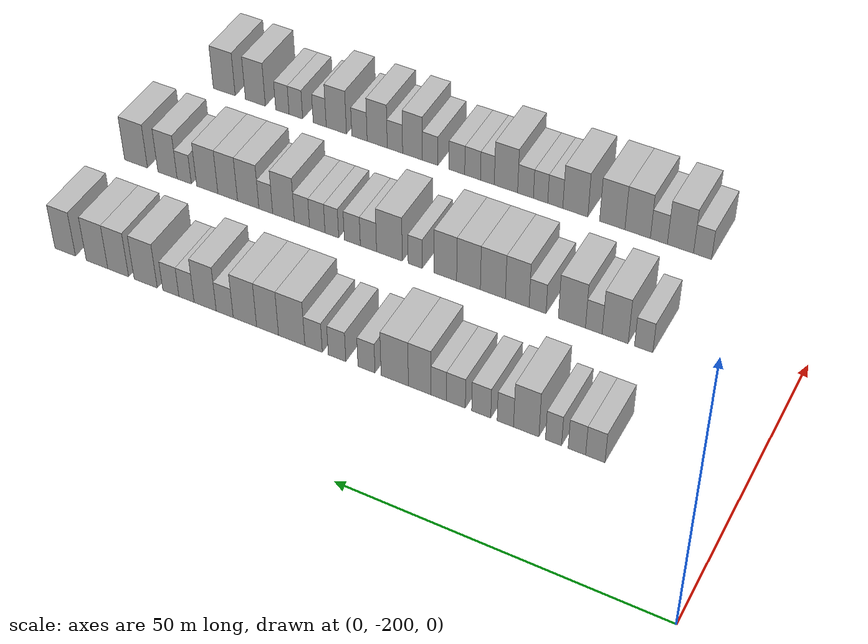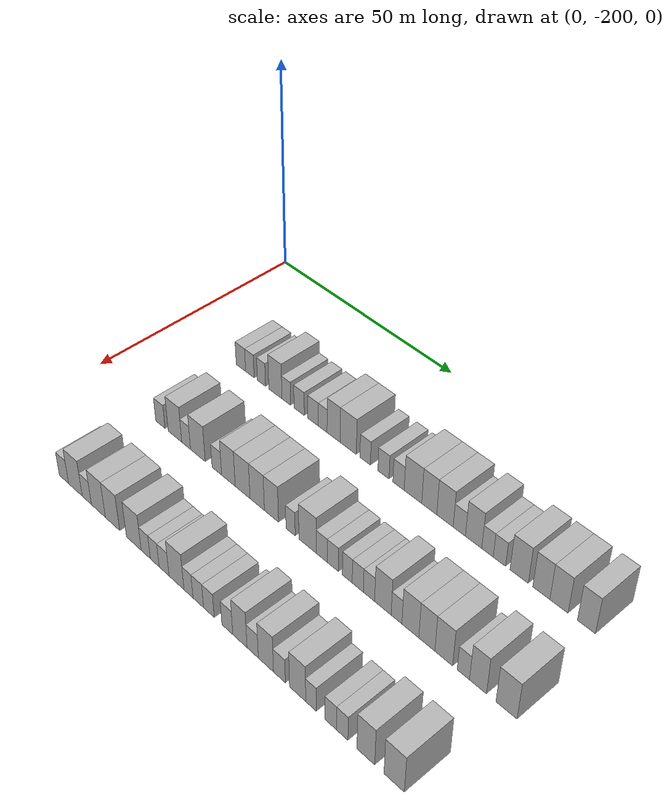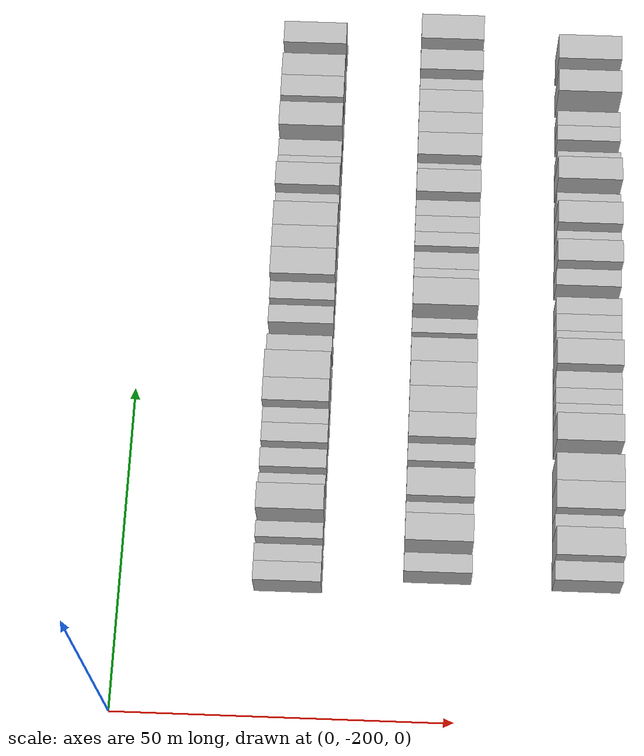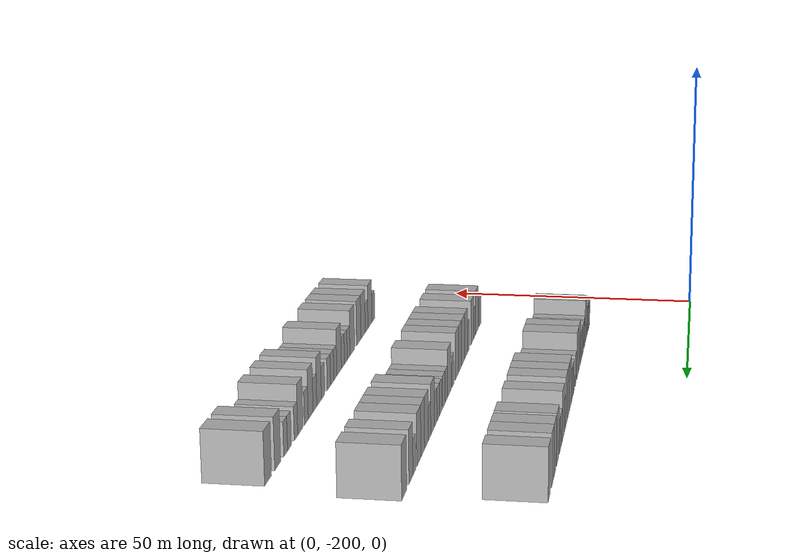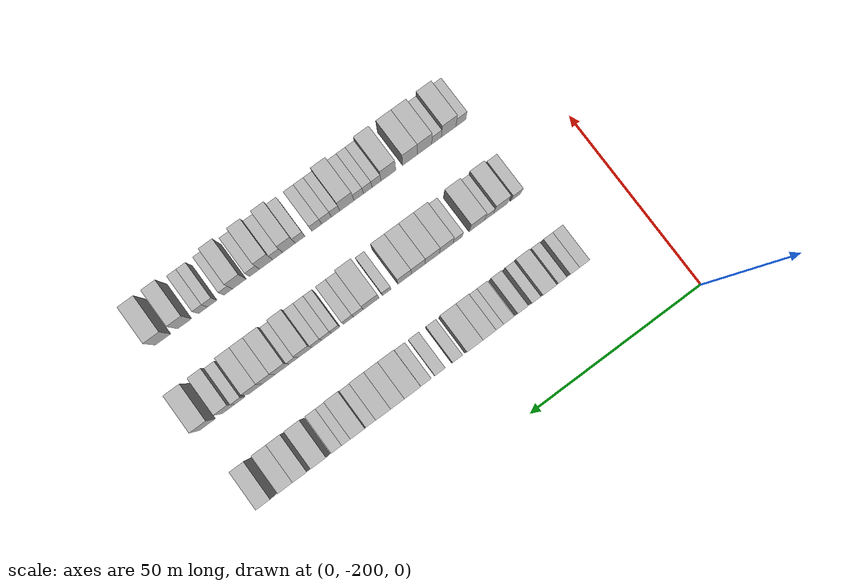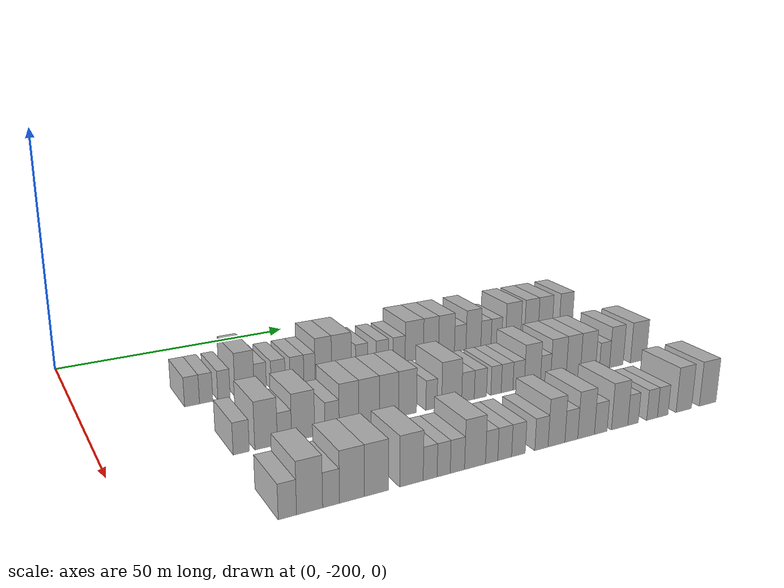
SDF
<sdf version="1.6">
 <world name="default">
  <model name="building_50">
   <static>1</static>
   <pose>25.0000 -179.8263 0 0.000000 0.000000 0.000000</pose>
   <link name="link">
    <pose>0 0 3.00 0 0 0</pose>
    <collision name="collision"><geometry><box><size>10.0000 2.9030 6.0000</size></box></geometry></collision>
    <visual name="visual">
     <cast_shadows>0</cast_shadows>
     <geometry><box><size>10.0000 2.9030 6.0000</size></box></geometry>
     <material>
      <script>
       <uri>model://HANNAS_wall/materials/scripts</uri>
       <uri>model://HANNAS_wall/materials/textures</uri>
       <name>vrc/HANNAS_wall</name>
      </script>
     </material>
    </visual>
   </link>
  </model>
  <model name="building_51">
   <static>1</static>
   <pose>25.0000 -177.0569 0 0.000000 0.000000 0.000000</pose>
   <link name="link">
    <pose>0 0 3.00 0 0 0</pose>
    <collision name="collision"><geometry><box><size>10.0000 2.6357 6.0000</size></box></geometry></collision>
    <visual name="visual">
     <cast_shadows>0</cast_shadows>
     <geometry><box><size>10.0000 2.6357 6.0000</size></box></geometry>
     <material>
      <script>
       <uri>model://HANNAS_wall/materials/scripts</uri>
       <uri>model://HANNAS_wall/materials/textures</uri>
       <name>vrc/HANNAS_wall</name>
      </script>
     </material>
    </visual>
   </link>
  </model>
  <model name="building_52">
   <static>1</static>
   <pose>25.0000 -173.5118 0 0.000000 0.000000 0.000000</pose>
   <link name="link">
    <pose>0 0 3.00 0 0 0</pose>
    <collision name="collision"><geometry><box><size>10.0000 2.4545 6.0000</size></box></geometry></collision>
    <visual name="visual">
     <cast_shadows>0</cast_shadows>
     <geometry><box><size>10.0000 2.4545 6.0000</size></box></geometry>
     <material>
      <script>
       <uri>model://HANNAS_wall/materials/scripts</uri>
       <uri>model://HANNAS_wall/materials/textures</uri>
       <name>vrc/HANNAS_wall</name>
      </script>
     </material>
    </visual>
   </link>
  </model>
  <model name="building_53">
   <static>1</static>
   <pose>25.0000 -169.3284 0 0.000000 0.000000 0.000000</pose>
   <link name="link">
    <pose>0 0 4.50 0 0 0</pose>
    <collision name="collision"><geometry><box><size>10.0000 3.9124 9.0000</size></box></geometry></collision>
    <visual name="visual">
     <cast_shadows>0</cast_shadows>
     <geometry><box><size>10.0000 3.9124 9.0000</size></box></geometry>
     <material>
      <script>
       <uri>model://HANNAS_wall/materials/scripts</uri>
       <uri>model://HANNAS_wall/materials/textures</uri>
       <name>vrc/HANNAS_wall</name>
      </script>
     </material>
    </visual>
   </link>
  </model>
  <model name="building_54">
   <static>1</static>
   <pose>25.0000 -166.1035 0 0.000000 0.000000 0.000000</pose>
   <link name="link">
    <pose>0 0 3.00 0 0 0</pose>
    <collision name="collision"><geometry><box><size>10.0000 2.5373 6.0000</size></box></geometry></collision>
    <visual name="visual">
     <cast_shadows>0</cast_shadows>
     <geometry><box><size>10.0000 2.5373 6.0000</size></box></geometry>
     <material>
      <script>
       <uri>model://HANNAS_wall/materials/scripts</uri>
       <uri>model://HANNAS_wall/materials/textures</uri>
       <name>vrc/HANNAS_wall</name>
      </script>
     </material>
    </visual>
   </link>
  </model>
  <model name="building_55">
   <static>1</static>
   <pose>25.0000 -162.3389 0 0.000000 0.000000 0.000000</pose>
   <link name="link">
    <pose>0 0 3.00 0 0 0</pose>
    <collision name="collision"><geometry><box><size>10.0000 2.9918 6.0000</size></box></geometry></collision>
    <visual name="visual">
     <cast_shadows>0</cast_shadows>
     <geometry><box><size>10.0000 2.9918 6.0000</size></box></geometry>
     <material>
      <script>
       <uri>model://HANNAS_wall/materials/scripts</uri>
       <uri>model://HANNAS_wall/materials/textures</uri>
       <name>vrc/HANNAS_wall</name>
      </script>
     </material>
    </visual>
   </link>
  </model>
  <model name="building_56">
   <static>1</static>
   <pose>25.0000 -158.3521 0 0.000000 0.000000 0.000000</pose>
   <link name="link">
    <pose>0 0 3.00 0 0 0</pose>
    <collision name="collision"><geometry><box><size>10.0000 2.9819 6.0000</size></box></geometry></collision>
    <visual name="visual">
     <cast_shadows>0</cast_shadows>
     <geometry><box><size>10.0000 2.9819 6.0000</size></box></geometry>
     <material>
      <script>
       <uri>model://HANNAS_wall/materials/scripts</uri>
       <uri>model://HANNAS_wall/materials/textures</uri>
       <name>vrc/HANNAS_wall</name>
      </script>
     </material>
    </visual>
   </link>
  </model>
  <model name="building_57">
   <static>1</static>
   <pose>25.0000 -155.6301 0 0.000000 0.000000 0.000000</pose>
   <link name="link">
    <pose>0 0 3.00 0 0 0</pose>
    <collision name="collision"><geometry><box><size>10.0000 2.4621 6.0000</size></box></geometry></collision>
    <visual name="visual">
     <cast_shadows>0</cast_shadows>
     <geometry><box><size>10.0000 2.4621 6.0000</size></box></geometry>
     <material>
      <script>
       <uri>model://HANNAS_wall/materials/scripts</uri>
       <uri>model://HANNAS_wall/materials/textures</uri>
       <name>vrc/HANNAS_wall</name>
      </script>
     </material>
    </visual>
   </link>
  </model>
  <model name="building_58">
   <static>1</static>
   <pose>25.0000 -152.5825 0 0.000000 0.000000 0.000000</pose>
   <link name="link">
    <pose>0 0 4.50 0 0 0</pose>
    <collision name="collision"><geometry><box><size>10.0000 3.6330 9.0000</size></box></geometry></collision>
    <visual name="visual">
     <cast_shadows>0</cast_shadows>
     <geometry><box><size>10.0000 3.6330 9.0000</size></box></geometry>
     <material>
      <script>
       <uri>model://HANNAS_wall/materials/scripts</uri>
       <uri>model://HANNAS_wall/materials/textures</uri>
       <name>vrc/HANNAS_wall</name>
      </script>
     </material>
    </visual>
   </link>
  </model>
  <model name="building_59">
   <static>1</static>
   <pose>25.0000 -148.5546 0 0.000000 0.000000 0.000000</pose>
   <link name="link">
    <pose>0 0 4.50 0 0 0</pose>
    <collision name="collision"><geometry><box><size>10.0000 4.4228 9.0000</size></box></geometry></collision>
    <visual name="visual">
     <cast_shadows>0</cast_shadows>
     <geometry><box><size>10.0000 4.4228 9.0000</size></box></geometry>
     <material>
      <script>
       <uri>model://HANNAS_wall/materials/scripts</uri>
       <uri>model://HANNAS_wall/materials/textures</uri>
       <name>vrc/HANNAS_wall</name>
      </script>
     </material>
    </visual>
   </link>
  </model>
  <model name="building_60">
   <static>1</static>
   <pose>25.0000 -143.9439 0 0.000000 0.000000 0.000000</pose>
   <link name="link">
    <pose>0 0 3.00 0 0 0</pose>
    <collision name="collision"><geometry><box><size>10.0000 2.7985 6.0000</size></box></geometry></collision>
    <visual name="visual">
     <cast_shadows>0</cast_shadows>
     <geometry><box><size>10.0000 2.7985 6.0000</size></box></geometry>
     <material>
      <script>
       <uri>model://HANNAS_wall/materials/scripts</uri>
       <uri>model://HANNAS_wall/materials/textures</uri>
       <name>vrc/HANNAS_wall</name>
      </script>
     </material>
    </visual>
   </link>
  </model>
  <model name="building_61">
   <static>1</static>
   <pose>25.0000 -139.0902 0 0.000000 0.000000 0.000000</pose>
   <link name="link">
    <pose>0 0 3.00 0 0 0</pose>
    <collision name="collision"><geometry><box><size>10.0000 2.9089 6.0000</size></box></geometry></collision>
    <visual name="visual">
     <cast_shadows>0</cast_shadows>
     <geometry><box><size>10.0000 2.9089 6.0000</size></box></geometry>
     <material>
      <script>
       <uri>model://HANNAS_wall/materials/scripts</uri>
       <uri>model://HANNAS_wall/materials/textures</uri>
       <name>vrc/HANNAS_wall</name>
      </script>
     </material>
    </visual>
   </link>
  </model>
  <model name="building_62">
   <static>1</static>
   <pose>25.0000 -135.1748 0 0.000000 0.000000 0.000000</pose>
   <link name="link">
    <pose>0 0 3.00 0 0 0</pose>
    <collision name="collision"><geometry><box><size>10.0000 2.9219 6.0000</size></box></geometry></collision>
    <visual name="visual">
     <cast_shadows>0</cast_shadows>
     <geometry><box><size>10.0000 2.9219 6.0000</size></box></geometry>
     <material>
      <script>
       <uri>model://HANNAS_wall/materials/scripts</uri>
       <uri>model://HANNAS_wall/materials/textures</uri>
       <name>vrc/HANNAS_wall</name>
      </script>
     </material>
    </visual>
   </link>
  </model>
  <model name="building_63">
   <static>1</static>
   <pose>25.0000 -131.4852 0 0.000000 0.000000 0.000000</pose>
   <link name="link">
    <pose>0 0 4.50 0 0 0</pose>
    <collision name="collision"><geometry><box><size>10.0000 4.4574 9.0000</size></box></geometry></collision>
    <visual name="visual">
     <cast_shadows>0</cast_shadows>
     <geometry><box><size>10.0000 4.4574 9.0000</size></box></geometry>
     <material>
      <script>
       <uri>model://HANNAS_wall/materials/scripts</uri>
       <uri>model://HANNAS_wall/materials/textures</uri>
       <name>vrc/HANNAS_wall</name>
      </script>
     </material>
    </visual>
   </link>
  </model>
  <model name="building_64">
   <static>1</static>
   <pose>25.0000 -127.3829 0 0.000000 0.000000 0.000000</pose>
   <link name="link">
    <pose>0 0 4.50 0 0 0</pose>
    <collision name="collision"><geometry><box><size>10.0000 3.7472 9.0000</size></box></geometry></collision>
    <visual name="visual">
     <cast_shadows>0</cast_shadows>
     <geometry><box><size>10.0000 3.7472 9.0000</size></box></geometry>
     <material>
      <script>
       <uri>model://HANNAS_wall/materials/scripts</uri>
       <uri>model://HANNAS_wall/materials/textures</uri>
       <name>vrc/HANNAS_wall</name>
      </script>
     </material>
    </visual>
   </link>
  </model>
  <model name="building_65">
   <static>1</static>
   <pose>25.0000 -123.4933 0 0.000000 0.000000 0.000000</pose>
   <link name="link">
    <pose>0 0 4.50 0 0 0</pose>
    <collision name="collision"><geometry><box><size>10.0000 4.0320 9.0000</size></box></geometry></collision>
    <visual name="visual">
     <cast_shadows>0</cast_shadows>
     <geometry><box><size>10.0000 4.0320 9.0000</size></box></geometry>
     <material>
      <script>
       <uri>model://HANNAS_wall/materials/scripts</uri>
       <uri>model://HANNAS_wall/materials/textures</uri>
       <name>vrc/HANNAS_wall</name>
      </script>
     </material>
    </visual>
   </link>
  </model>
  <model name="building_66">
   <static>1</static>
   <pose>25.0000 -120.0000 0 0.000000 0.000000 0.000000</pose>
   <link name="link">
    <pose>0 0 3.00 0 0 0</pose>
    <collision name="collision"><geometry><box><size>10.0000 2.9545 6.0000</size></box></geometry></collision>
    <visual name="visual">
     <cast_shadows>0</cast_shadows>
     <geometry><box><size>10.0000 2.9545 6.0000</size></box></geometry>
     <material>
      <script>
       <uri>model://HANNAS_wall/materials/scripts</uri>
       <uri>model://HANNAS_wall/materials/textures</uri>
       <name>vrc/HANNAS_wall</name>
      </script>
     </material>
    </visual>
   </link>
  </model>
  <model name="building_67">
   <static>1</static>
   <pose>25.0000 -116.5844 0 0.000000 0.000000 0.000000</pose>
   <link name="link">
    <pose>0 0 4.50 0 0 0</pose>
    <collision name="collision"><geometry><box><size>10.0000 3.8766 9.0000</size></box></geometry></collision>
    <visual name="visual">
     <cast_shadows>0</cast_shadows>
     <geometry><box><size>10.0000 3.8766 9.0000</size></box></geometry>
     <material>
      <script>
       <uri>model://HANNAS_wall/materials/scripts</uri>
       <uri>model://HANNAS_wall/materials/textures</uri>
       <name>vrc/HANNAS_wall</name>
      </script>
     </material>
    </visual>
   </link>
  </model>
  <model name="building_68">
   <static>1</static>
   <pose>25.0000 -113.3017 0 0.000000 0.000000 0.000000</pose>
   <link name="link">
    <pose>0 0 3.00 0 0 0</pose>
    <collision name="collision"><geometry><box><size>10.0000 2.6889 6.0000</size></box></geometry></collision>
    <visual name="visual">
     <cast_shadows>0</cast_shadows>
     <geometry><box><size>10.0000 2.6889 6.0000</size></box></geometry>
     <material>
      <script>
       <uri>model://HANNAS_wall/materials/scripts</uri>
       <uri>model://HANNAS_wall/materials/textures</uri>
       <name>vrc/HANNAS_wall</name>
      </script>
     </material>
    </visual>
   </link>
  </model>
  <model name="building_69">
   <static>1</static>
   <pose>25.0000 -110.5269 0 0.000000 0.000000 0.000000</pose>
   <link name="link">
    <pose>0 0 3.00 0 0 0</pose>
    <collision name="collision"><geometry><box><size>10.0000 2.8607 6.0000</size></box></geometry></collision>
    <visual name="visual">
     <cast_shadows>0</cast_shadows>
     <geometry><box><size>10.0000 2.8607 6.0000</size></box></geometry>
     <material>
      <script>
       <uri>model://HANNAS_wall/materials/scripts</uri>
       <uri>model://HANNAS_wall/materials/textures</uri>
       <name>vrc/HANNAS_wall</name>
      </script>
     </material>
    </visual>
   </link>
  </model>
  <model name="building_70">
   <static>1</static>
   <pose>25.0000 -106.0177 0 0.000000 0.000000 0.000000</pose>
   <link name="link">
    <pose>0 0 4.50 0 0 0</pose>
    <collision name="collision"><geometry><box><size>10.0000 4.1577 9.0000</size></box></geometry></collision>
    <visual name="visual">
     <cast_shadows>0</cast_shadows>
     <geometry><box><size>10.0000 4.1577 9.0000</size></box></geometry>
     <material>
      <script>
       <uri>model://HANNAS_wall/materials/scripts</uri>
       <uri>model://HANNAS_wall/materials/textures</uri>
       <name>vrc/HANNAS_wall</name>
      </script>
     </material>
    </visual>
   </link>
  </model>
  <model name="building_71">
   <static>1</static>
   <pose>25.0000 -101.0461 0 0.000000 0.000000 0.000000</pose>
   <link name="link">
    <pose>0 0 4.50 0 0 0</pose>
    <collision name="collision"><geometry><box><size>10.0000 3.7855 9.0000</size></box></geometry></collision>
    <visual name="visual">
     <cast_shadows>0</cast_shadows>
     <geometry><box><size>10.0000 3.7855 9.0000</size></box></geometry>
     <material>
      <script>
       <uri>model://HANNAS_wall/materials/scripts</uri>
       <uri>model://HANNAS_wall/materials/textures</uri>
       <name>vrc/HANNAS_wall</name>
      </script>
     </material>
    </visual>
   </link>
  </model>
  <model name="building_72">
   <static>1</static>
   <pose>25.0000 -97.1791 0 0.000000 0.000000 0.000000</pose>
   <link name="link">
    <pose>0 0 4.50 0 0 0</pose>
    <collision name="collision"><geometry><box><size>10.0000 3.9485 9.0000</size></box></geometry></collision>
    <visual name="visual">
     <cast_shadows>0</cast_shadows>
     <geometry><box><size>10.0000 3.9485 9.0000</size></box></geometry>
     <material>
      <script>
       <uri>model://HANNAS_wall/materials/scripts</uri>
       <uri>model://HANNAS_wall/materials/textures</uri>
       <name>vrc/HANNAS_wall</name>
      </script>
     </material>
    </visual>
   </link>
  </model>
  <model name="building_73">
   <static>1</static>
   <pose>25.0000 -91.2980 0 0.000000 0.000000 0.000000</pose>
   <link name="link">
    <pose>0 0 4.50 0 0 0</pose>
    <collision name="collision"><geometry><box><size>10.0000 3.8136 9.0000</size></box></geometry></collision>
    <visual name="visual">
     <cast_shadows>0</cast_shadows>
     <geometry><box><size>10.0000 3.8136 9.0000</size></box></geometry>
     <material>
      <script>
       <uri>model://HANNAS_wall/materials/scripts</uri>
       <uri>model://HANNAS_wall/materials/textures</uri>
       <name>vrc/HANNAS_wall</name>
      </script>
     </material>
    </visual>
   </link>
  </model>
  <model name="building_239">
   <static>1</static>
   <pose>47.0000 -177.7570 0 0.000000 0.000000 0.000000</pose>
   <link name="link">
    <pose>0 0 3.00 0 0 0</pose>
    <collision name="collision"><geometry><box><size>10.0000 2.8831 6.0000</size></box></geometry></collision>
    <visual name="visual">
     <cast_shadows>0</cast_shadows>
     <geometry><box><size>10.0000 2.8831 6.0000</size></box></geometry>
     <material>
      <script>
       <uri>model://HANNAS_wall/materials/scripts</uri>
       <uri>model://HANNAS_wall/materials/textures</uri>
       <name>vrc/HANNAS_wall</name>
      </script>
     </material>
    </visual>
   </link>
  </model>
  <model name="building_240">
   <static>1</static>
   <pose>47.0000 -173.2483 0 0.000000 0.000000 0.000000</pose>
   <link name="link">
    <pose>0 0 4.50 0 0 0</pose>
    <collision name="collision"><geometry><box><size>10.0000 4.1343 9.0000</size></box></geometry></collision>
    <visual name="visual">
     <cast_shadows>0</cast_shadows>
     <geometry><box><size>10.0000 4.1343 9.0000</size></box></geometry>
     <material>
      <script>
       <uri>model://HANNAS_wall/materials/scripts</uri>
       <uri>model://HANNAS_wall/materials/textures</uri>
       <name>vrc/HANNAS_wall</name>
      </script>
     </material>
    </visual>
   </link>
  </model>
  <model name="building_241">
   <static>1</static>
   <pose>47.0000 -169.8512 0 0.000000 0.000000 0.000000</pose>
   <link name="link">
    <pose>0 0 3.00 0 0 0</pose>
    <collision name="collision"><geometry><box><size>10.0000 2.6598 6.0000</size></box></geometry></collision>
    <visual name="visual">
     <cast_shadows>0</cast_shadows>
     <geometry><box><size>10.0000 2.6598 6.0000</size></box></geometry>
     <material>
      <script>
       <uri>model://HANNAS_wall/materials/scripts</uri>
       <uri>model://HANNAS_wall/materials/textures</uri>
       <name>vrc/HANNAS_wall</name>
      </script>
     </material>
    </visual>
   </link>
  </model>
  <model name="building_242">
   <static>1</static>
   <pose>47.0000 -166.3302 0 0.000000 0.000000 0.000000</pose>
   <link name="link">
    <pose>0 0 4.50 0 0 0</pose>
    <collision name="collision"><geometry><box><size>10.0000 4.3821 9.0000</size></box></geometry></collision>
    <visual name="visual">
     <cast_shadows>0</cast_shadows>
     <geometry><box><size>10.0000 4.3821 9.0000</size></box></geometry>
     <material>
      <script>
       <uri>model://HANNAS_wall/materials/scripts</uri>
       <uri>model://HANNAS_wall/materials/textures</uri>
       <name>vrc/HANNAS_wall</name>
      </script>
     </material>
    </visual>
   </link>
  </model>
  <model name="building_243">
   <static>1</static>
   <pose>47.0000 -160.7536 0 0.000000 0.000000 0.000000</pose>
   <link name="link">
    <pose>0 0 3.00 0 0 0</pose>
    <collision name="collision"><geometry><box><size>10.0000 2.7712 6.0000</size></box></geometry></collision>
    <visual name="visual">
     <cast_shadows>0</cast_shadows>
     <geometry><box><size>10.0000 2.7712 6.0000</size></box></geometry>
     <material>
      <script>
       <uri>model://HANNAS_wall/materials/scripts</uri>
       <uri>model://HANNAS_wall/materials/textures</uri>
       <name>vrc/HANNAS_wall</name>
      </script>
     </material>
    </visual>
   </link>
  </model>
  <model name="building_244">
   <static>1</static>
   <pose>47.0000 -157.4086 0 0.000000 0.000000 0.000000</pose>
   <link name="link">
    <pose>0 0 4.50 0 0 0</pose>
    <collision name="collision"><geometry><box><size>10.0000 3.9187 9.0000</size></box></geometry></collision>
    <visual name="visual">
     <cast_shadows>0</cast_shadows>
     <geometry><box><size>10.0000 3.9187 9.0000</size></box></geometry>
     <material>
      <script>
       <uri>model://HANNAS_wall/materials/scripts</uri>
       <uri>model://HANNAS_wall/materials/textures</uri>
       <name>vrc/HANNAS_wall</name>
      </script>
     </material>
    </visual>
   </link>
  </model>
  <model name="building_245">
   <static>1</static>
   <pose>47.0000 -153.3673 0 0.000000 0.000000 0.000000</pose>
   <link name="link">
    <pose>0 0 4.50 0 0 0</pose>
    <collision name="collision"><geometry><box><size>10.0000 4.1640 9.0000</size></box></geometry></collision>
    <visual name="visual">
     <cast_shadows>0</cast_shadows>
     <geometry><box><size>10.0000 4.1640 9.0000</size></box></geometry>
     <material>
      <script>
       <uri>model://HANNAS_wall/materials/scripts</uri>
       <uri>model://HANNAS_wall/materials/textures</uri>
       <name>vrc/HANNAS_wall</name>
      </script>
     </material>
    </visual>
   </link>
  </model>
  <model name="building_246">
   <static>1</static>
   <pose>47.0000 -149.2938 0 0.000000 0.000000 0.000000</pose>
   <link name="link">
    <pose>0 0 4.50 0 0 0</pose>
    <collision name="collision"><geometry><box><size>10.0000 3.9829 9.0000</size></box></geometry></collision>
    <visual name="visual">
     <cast_shadows>0</cast_shadows>
     <geometry><box><size>10.0000 3.9829 9.0000</size></box></geometry>
     <material>
      <script>
       <uri>model://HANNAS_wall/materials/scripts</uri>
       <uri>model://HANNAS_wall/materials/textures</uri>
       <name>vrc/HANNAS_wall</name>
      </script>
     </material>
    </visual>
   </link>
  </model>
  <model name="building_247">
   <static>1</static>
   <pose>47.0000 -145.3880 0 0.000000 0.000000 0.000000</pose>
   <link name="link">
    <pose>0 0 4.50 0 0 0</pose>
    <collision name="collision"><geometry><box><size>10.0000 3.8287 9.0000</size></box></geometry></collision>
    <visual name="visual">
     <cast_shadows>0</cast_shadows>
     <geometry><box><size>10.0000 3.8287 9.0000</size></box></geometry>
     <material>
      <script>
       <uri>model://HANNAS_wall/materials/scripts</uri>
       <uri>model://HANNAS_wall/materials/textures</uri>
       <name>vrc/HANNAS_wall</name>
      </script>
     </material>
    </visual>
   </link>
  </model>
  <model name="building_248">
   <static>1</static>
   <pose>47.0000 -140.2530 0 0.000000 0.000000 0.000000</pose>
   <link name="link">
    <pose>0 0 3.00 0 0 0</pose>
    <collision name="collision"><geometry><box><size>10.0000 2.4413 6.0000</size></box></geometry></collision>
    <visual name="visual">
     <cast_shadows>0</cast_shadows>
     <geometry><box><size>10.0000 2.4413 6.0000</size></box></geometry>
     <material>
      <script>
       <uri>model://HANNAS_wall/materials/scripts</uri>
       <uri>model://HANNAS_wall/materials/textures</uri>
       <name>vrc/HANNAS_wall</name>
      </script>
     </material>
    </visual>
   </link>
  </model>
  <model name="building_249">
   <static>1</static>
   <pose>47.0000 -135.7976 0 0.000000 0.000000 0.000000</pose>
   <link name="link">
    <pose>0 0 4.50 0 0 0</pose>
    <collision name="collision"><geometry><box><size>10.0000 4.4695 9.0000</size></box></geometry></collision>
    <visual name="visual">
     <cast_shadows>0</cast_shadows>
     <geometry><box><size>10.0000 4.4695 9.0000</size></box></geometry>
     <material>
      <script>
       <uri>model://HANNAS_wall/materials/scripts</uri>
       <uri>model://HANNAS_wall/materials/textures</uri>
       <name>vrc/HANNAS_wall</name>
      </script>
     </material>
    </visual>
   </link>
  </model>
  <model name="building_250">
   <static>1</static>
   <pose>47.0000 -132.1419 0 0.000000 0.000000 0.000000</pose>
   <link name="link">
    <pose>0 0 3.00 0 0 0</pose>
    <collision name="collision"><geometry><box><size>10.0000 2.8418 6.0000</size></box></geometry></collision>
    <visual name="visual">
     <cast_shadows>0</cast_shadows>
     <geometry><box><size>10.0000 2.8418 6.0000</size></box></geometry>
     <material>
      <script>
       <uri>model://HANNAS_wall/materials/scripts</uri>
       <uri>model://HANNAS_wall/materials/textures</uri>
       <name>vrc/HANNAS_wall</name>
      </script>
     </material>
    </visual>
   </link>
  </model>
  <model name="building_251">
   <static>1</static>
   <pose>47.0000 -129.3116 0 0.000000 0.000000 0.000000</pose>
   <link name="link">
    <pose>0 0 3.00 0 0 0</pose>
    <collision name="collision"><geometry><box><size>10.0000 2.8187 6.0000</size></box></geometry></collision>
    <visual name="visual">
     <cast_shadows>0</cast_shadows>
     <geometry><box><size>10.0000 2.8187 6.0000</size></box></geometry>
     <material>
      <script>
       <uri>model://HANNAS_wall/materials/scripts</uri>
       <uri>model://HANNAS_wall/materials/textures</uri>
       <name>vrc/HANNAS_wall</name>
      </script>
     </material>
    </visual>
   </link>
  </model>
  <model name="building_252">
   <static>1</static>
   <pose>47.0000 -125.6902 0 0.000000 0.000000 0.000000</pose>
   <link name="link">
    <pose>0 0 3.00 0 0 0</pose>
    <collision name="collision"><geometry><box><size>10.0000 2.4242 6.0000</size></box></geometry></collision>
    <visual name="visual">
     <cast_shadows>0</cast_shadows>
     <geometry><box><size>10.0000 2.4242 6.0000</size></box></geometry>
     <material>
      <script>
       <uri>model://HANNAS_wall/materials/scripts</uri>
       <uri>model://HANNAS_wall/materials/textures</uri>
       <name>vrc/HANNAS_wall</name>
      </script>
     </material>
    </visual>
   </link>
  </model>
  <model name="building_253">
   <static>1</static>
   <pose>47.0000 -123.0945 0 0.000000 0.000000 0.000000</pose>
   <link name="link">
    <pose>0 0 3.00 0 0 0</pose>
    <collision name="collision"><geometry><box><size>10.0000 2.7671 6.0000</size></box></geometry></collision>
    <visual name="visual">
     <cast_shadows>0</cast_shadows>
     <geometry><box><size>10.0000 2.7671 6.0000</size></box></geometry>
     <material>
      <script>
       <uri>model://HANNAS_wall/materials/scripts</uri>
       <uri>model://HANNAS_wall/materials/textures</uri>
       <name>vrc/HANNAS_wall</name>
      </script>
     </material>
    </visual>
   </link>
  </model>
  <model name="building_254">
   <static>1</static>
   <pose>47.0000 -120.3528 0 0.000000 0.000000 0.000000</pose>
   <link name="link">
    <pose>0 0 3.00 0 0 0</pose>
    <collision name="collision"><geometry><box><size>10.0000 2.7163 6.0000</size></box></geometry></collision>
    <visual name="visual">
     <cast_shadows>0</cast_shadows>
     <geometry><box><size>10.0000 2.7163 6.0000</size></box></geometry>
     <material>
      <script>
       <uri>model://HANNAS_wall/materials/scripts</uri>
       <uri>model://HANNAS_wall/materials/textures</uri>
       <name>vrc/HANNAS_wall</name>
      </script>
     </material>
    </visual>
   </link>
  </model>
  <model name="building_255">
   <static>1</static>
   <pose>47.0000 -117.0243 0 0.000000 0.000000 0.000000</pose>
   <link name="link">
    <pose>0 0 4.50 0 0 0</pose>
    <collision name="collision"><geometry><box><size>10.0000 3.9406 9.0000</size></box></geometry></collision>
    <visual name="visual">
     <cast_shadows>0</cast_shadows>
     <geometry><box><size>10.0000 3.9406 9.0000</size></box></geometry>
     <material>
      <script>
       <uri>model://HANNAS_wall/materials/scripts</uri>
       <uri>model://HANNAS_wall/materials/textures</uri>
       <name>vrc/HANNAS_wall</name>
      </script>
     </material>
    </visual>
   </link>
  </model>
  <model name="building_256">
   <static>1</static>
   <pose>47.0000 -113.7944 0 0.000000 0.000000 0.000000</pose>
   <link name="link">
    <pose>0 0 3.00 0 0 0</pose>
    <collision name="collision"><geometry><box><size>10.0000 2.5194 6.0000</size></box></geometry></collision>
    <visual name="visual">
     <cast_shadows>0</cast_shadows>
     <geometry><box><size>10.0000 2.5194 6.0000</size></box></geometry>
     <material>
      <script>
       <uri>model://HANNAS_wall/materials/scripts</uri>
       <uri>model://HANNAS_wall/materials/textures</uri>
       <name>vrc/HANNAS_wall</name>
      </script>
     </material>
    </visual>
   </link>
  </model>
  <model name="building_257">
   <static>1</static>
   <pose>47.0000 -110.5740 0 0.000000 0.000000 0.000000</pose>
   <link name="link">
    <pose>0 0 4.50 0 0 0</pose>
    <collision name="collision"><geometry><box><size>10.0000 3.9214 9.0000</size></box></geometry></collision>
    <visual name="visual">
     <cast_shadows>0</cast_shadows>
     <geometry><box><size>10.0000 3.9214 9.0000</size></box></geometry>
     <material>
      <script>
       <uri>model://HANNAS_wall/materials/scripts</uri>
       <uri>model://HANNAS_wall/materials/textures</uri>
       <name>vrc/HANNAS_wall</name>
      </script>
     </material>
    </visual>
   </link>
  </model>
  <model name="building_258">
   <static>1</static>
   <pose>47.0000 -106.7896 0 0.000000 0.000000 0.000000</pose>
   <link name="link">
    <pose>0 0 4.50 0 0 0</pose>
    <collision name="collision"><geometry><box><size>10.0000 3.6473 9.0000</size></box></geometry></collision>
    <visual name="visual">
     <cast_shadows>0</cast_shadows>
     <geometry><box><size>10.0000 3.6473 9.0000</size></box></geometry>
     <material>
      <script>
       <uri>model://HANNAS_wall/materials/scripts</uri>
       <uri>model://HANNAS_wall/materials/textures</uri>
       <name>vrc/HANNAS_wall</name>
      </script>
     </material>
    </visual>
   </link>
  </model>
  <model name="building_259">
   <static>1</static>
   <pose>47.0000 -102.9840 0 0.000000 0.000000 0.000000</pose>
   <link name="link">
    <pose>0 0 4.50 0 0 0</pose>
    <collision name="collision"><geometry><box><size>10.0000 3.9639 9.0000</size></box></geometry></collision>
    <visual name="visual">
     <cast_shadows>0</cast_shadows>
     <geometry><box><size>10.0000 3.9639 9.0000</size></box></geometry>
     <material>
      <script>
       <uri>model://HANNAS_wall/materials/scripts</uri>
       <uri>model://HANNAS_wall/materials/textures</uri>
       <name>vrc/HANNAS_wall</name>
      </script>
     </material>
    </visual>
   </link>
  </model>
  <model name="building_260">
   <static>1</static>
   <pose>47.0000 -98.6578 0 0.000000 0.000000 0.000000</pose>
   <link name="link">
    <pose>0 0 3.00 0 0 0</pose>
    <collision name="collision"><geometry><box><size>10.0000 2.6886 6.0000</size></box></geometry></collision>
    <visual name="visual">
     <cast_shadows>0</cast_shadows>
     <geometry><box><size>10.0000 2.6886 6.0000</size></box></geometry>
     <material>
      <script>
       <uri>model://HANNAS_wall/materials/scripts</uri>
       <uri>model://HANNAS_wall/materials/textures</uri>
       <name>vrc/HANNAS_wall</name>
      </script>
     </material>
    </visual>
   </link>
  </model>
  <model name="building_261">
   <static>1</static>
   <pose>47.0000 -95.4860 0 0.000000 0.000000 0.000000</pose>
   <link name="link">
    <pose>0 0 4.50 0 0 0</pose>
    <collision name="collision"><geometry><box><size>10.0000 3.6550 9.0000</size></box></geometry></collision>
    <visual name="visual">
     <cast_shadows>0</cast_shadows>
     <geometry><box><size>10.0000 3.6550 9.0000</size></box></geometry>
     <material>
      <script>
       <uri>model://HANNAS_wall/materials/scripts</uri>
       <uri>model://HANNAS_wall/materials/textures</uri>
       <name>vrc/HANNAS_wall</name>
      </script>
     </material>
    </visual>
   </link>
  </model>
  <model name="building_262">
   <static>1</static>
   <pose>47.0000 -89.4570 0 0.000000 0.000000 0.000000</pose>
   <link name="link">
    <pose>0 0 4.50 0 0 0</pose>
    <collision name="collision"><geometry><box><size>10.0000 4.4030 9.0000</size></box></geometry></collision>
    <visual name="visual">
     <cast_shadows>0</cast_shadows>
     <geometry><box><size>10.0000 4.4030 9.0000</size></box></geometry>
     <material>
      <script>
       <uri>model://HANNAS_wall/materials/scripts</uri>
       <uri>model://HANNAS_wall/materials/textures</uri>
       <name>vrc/HANNAS_wall</name>
      </script>
     </material>
    </visual>
   </link>
  </model>
  <model name="building_440">
   <static>1</static>
   <pose>69.0000 -178.2325 0 0.000000 0.000000 0.000000</pose>
   <link name="link">
    <pose>0 0 3.00 0 0 0</pose>
    <collision name="collision"><geometry><box><size>10.0000 2.9511 6.0000</size></box></geometry></collision>
    <visual name="visual">
     <cast_shadows>0</cast_shadows>
     <geometry><box><size>10.0000 2.9511 6.0000</size></box></geometry>
     <material>
      <script>
       <uri>model://HANNAS_wall/materials/scripts</uri>
       <uri>model://HANNAS_wall/materials/textures</uri>
       <name>vrc/HANNAS_wall</name>
      </script>
     </material>
    </visual>
   </link>
  </model>
  <model name="building_441">
   <static>1</static>
   <pose>69.0000 -174.6087 0 0.000000 0.000000 0.000000</pose>
   <link name="link">
    <pose>0 0 4.50 0 0 0</pose>
    <collision name="collision"><geometry><box><size>10.0000 4.2965 9.0000</size></box></geometry></collision>
    <visual name="visual">
     <cast_shadows>0</cast_shadows>
     <geometry><box><size>10.0000 4.2965 9.0000</size></box></geometry>
     <material>
      <script>
       <uri>model://HANNAS_wall/materials/scripts</uri>
       <uri>model://HANNAS_wall/materials/textures</uri>
       <name>vrc/HANNAS_wall</name>
      </script>
     </material>
    </visual>
   </link>
  </model>
  <model name="building_442">
   <static>1</static>
   <pose>69.0000 -171.0478 0 0.000000 0.000000 0.000000</pose>
   <link name="link">
    <pose>0 0 3.00 0 0 0</pose>
    <collision name="collision"><geometry><box><size>10.0000 2.8254 6.0000</size></box></geometry></collision>
    <visual name="visual">
     <cast_shadows>0</cast_shadows>
     <geometry><box><size>10.0000 2.8254 6.0000</size></box></geometry>
     <material>
      <script>
       <uri>model://HANNAS_wall/materials/scripts</uri>
       <uri>model://HANNAS_wall/materials/textures</uri>
       <name>vrc/HANNAS_wall</name>
      </script>
     </material>
    </visual>
   </link>
  </model>
  <model name="building_443">
   <static>1</static>
   <pose>69.0000 -167.5039 0 0.000000 0.000000 0.000000</pose>
   <link name="link">
    <pose>0 0 4.50 0 0 0</pose>
    <collision name="collision"><geometry><box><size>10.0000 4.2624 9.0000</size></box></geometry></collision>
    <visual name="visual">
     <cast_shadows>0</cast_shadows>
     <geometry><box><size>10.0000 4.2624 9.0000</size></box></geometry>
     <material>
      <script>
       <uri>model://HANNAS_wall/materials/scripts</uri>
       <uri>model://HANNAS_wall/materials/textures</uri>
       <name>vrc/HANNAS_wall</name>
      </script>
     </material>
    </visual>
   </link>
  </model>
  <model name="building_444">
   <static>1</static>
   <pose>69.0000 -163.2344 0 0.000000 0.000000 0.000000</pose>
   <link name="link">
    <pose>0 0 4.50 0 0 0</pose>
    <collision name="collision"><geometry><box><size>10.0000 4.2766 9.0000</size></box></geometry></collision>
    <visual name="visual">
     <cast_shadows>0</cast_shadows>
     <geometry><box><size>10.0000 4.2766 9.0000</size></box></geometry>
     <material>
      <script>
       <uri>model://HANNAS_wall/materials/scripts</uri>
       <uri>model://HANNAS_wall/materials/textures</uri>
       <name>vrc/HANNAS_wall</name>
      </script>
     </material>
    </visual>
   </link>
  </model>
  <model name="building_445">
   <static>1</static>
   <pose>69.0000 -156.9478 0 0.000000 0.000000 0.000000</pose>
   <link name="link">
    <pose>0 0 4.50 0 0 0</pose>
    <collision name="collision"><geometry><box><size>10.0000 4.2966 9.0000</size></box></geometry></collision>
    <visual name="visual">
     <cast_shadows>0</cast_shadows>
     <geometry><box><size>10.0000 4.2966 9.0000</size></box></geometry>
     <material>
      <script>
       <uri>model://HANNAS_wall/materials/scripts</uri>
       <uri>model://HANNAS_wall/materials/textures</uri>
       <name>vrc/HANNAS_wall</name>
      </script>
     </material>
    </visual>
   </link>
  </model>
  <model name="building_446">
   <static>1</static>
   <pose>69.0000 -153.4996 0 0.000000 0.000000 0.000000</pose>
   <link name="link">
    <pose>0 0 3.00 0 0 0</pose>
    <collision name="collision"><geometry><box><size>10.0000 2.5998 6.0000</size></box></geometry></collision>
    <visual name="visual">
     <cast_shadows>0</cast_shadows>
     <geometry><box><size>10.0000 2.5998 6.0000</size></box></geometry>
     <material>
      <script>
       <uri>model://HANNAS_wall/materials/scripts</uri>
       <uri>model://HANNAS_wall/materials/textures</uri>
       <name>vrc/HANNAS_wall</name>
      </script>
     </material>
    </visual>
   </link>
  </model>
  <model name="building_447">
   <static>1</static>
   <pose>69.0000 -150.9517 0 0.000000 0.000000 0.000000</pose>
   <link name="link">
    <pose>0 0 3.00 0 0 0</pose>
    <collision name="collision"><geometry><box><size>10.0000 2.4961 6.0000</size></box></geometry></collision>
    <visual name="visual">
     <cast_shadows>0</cast_shadows>
     <geometry><box><size>10.0000 2.4961 6.0000</size></box></geometry>
     <material>
      <script>
       <uri>model://HANNAS_wall/materials/scripts</uri>
       <uri>model://HANNAS_wall/materials/textures</uri>
       <name>vrc/HANNAS_wall</name>
      </script>
     </material>
    </visual>
   </link>
  </model>
  <model name="building_448">
   <static>1</static>
   <pose>69.0000 -148.3251 0 0.000000 0.000000 0.000000</pose>
   <link name="link">
    <pose>0 0 3.00 0 0 0</pose>
    <collision name="collision"><geometry><box><size>10.0000 2.7571 6.0000</size></box></geometry></collision>
    <visual name="visual">
     <cast_shadows>0</cast_shadows>
     <geometry><box><size>10.0000 2.7571 6.0000</size></box></geometry>
     <material>
      <script>
       <uri>model://HANNAS_wall/materials/scripts</uri>
       <uri>model://HANNAS_wall/materials/textures</uri>
       <name>vrc/HANNAS_wall</name>
      </script>
     </material>
    </visual>
   </link>
  </model>
  <model name="building_449">
   <static>1</static>
   <pose>69.0000 -144.8923 0 0.000000 0.000000 0.000000</pose>
   <link name="link">
    <pose>0 0 4.50 0 0 0</pose>
    <collision name="collision"><geometry><box><size>10.0000 4.1085 9.0000</size></box></geometry></collision>
    <visual name="visual">
     <cast_shadows>0</cast_shadows>
     <geometry><box><size>10.0000 4.1085 9.0000</size></box></geometry>
     <material>
      <script>
       <uri>model://HANNAS_wall/materials/scripts</uri>
       <uri>model://HANNAS_wall/materials/textures</uri>
       <name>vrc/HANNAS_wall</name>
      </script>
     </material>
    </visual>
   </link>
  </model>
  <model name="building_450">
   <static>1</static>
   <pose>69.0000 -141.6111 0 0.000000 0.000000 0.000000</pose>
   <link name="link">
    <pose>0 0 3.00 0 0 0</pose>
    <collision name="collision"><geometry><box><size>10.0000 2.4538 6.0000</size></box></geometry></collision>
    <visual name="visual">
     <cast_shadows>0</cast_shadows>
     <geometry><box><size>10.0000 2.4538 6.0000</size></box></geometry>
     <material>
      <script>
       <uri>model://HANNAS_wall/materials/scripts</uri>
       <uri>model://HANNAS_wall/materials/textures</uri>
       <name>vrc/HANNAS_wall</name>
      </script>
     </material>
    </visual>
   </link>
  </model>
  <model name="building_451">
   <static>1</static>
   <pose>69.0000 -138.9802 0 0.000000 0.000000 0.000000</pose>
   <link name="link">
    <pose>0 0 3.00 0 0 0</pose>
    <collision name="collision"><geometry><box><size>10.0000 2.8081 6.0000</size></box></geometry></collision>
    <visual name="visual">
     <cast_shadows>0</cast_shadows>
     <geometry><box><size>10.0000 2.8081 6.0000</size></box></geometry>
     <material>
      <script>
       <uri>model://HANNAS_wall/materials/scripts</uri>
       <uri>model://HANNAS_wall/materials/textures</uri>
       <name>vrc/HANNAS_wall</name>
      </script>
     </material>
    </visual>
   </link>
  </model>
  <model name="building_452">
   <static>1</static>
   <pose>69.0000 -136.1683 0 0.000000 0.000000 0.000000</pose>
   <link name="link">
    <pose>0 0 3.00 0 0 0</pose>
    <collision name="collision"><geometry><box><size>10.0000 2.8156 6.0000</size></box></geometry></collision>
    <visual name="visual">
     <cast_shadows>0</cast_shadows>
     <geometry><box><size>10.0000 2.8156 6.0000</size></box></geometry>
     <material>
      <script>
       <uri>model://HANNAS_wall/materials/scripts</uri>
       <uri>model://HANNAS_wall/materials/textures</uri>
       <name>vrc/HANNAS_wall</name>
      </script>
     </material>
    </visual>
   </link>
  </model>
  <model name="building_453">
   <static>1</static>
   <pose>69.0000 -131.3546 0 0.000000 0.000000 0.000000</pose>
   <link name="link">
    <pose>0 0 3.00 0 0 0</pose>
    <collision name="collision"><geometry><box><size>10.0000 2.8118 6.0000</size></box></geometry></collision>
    <visual name="visual">
     <cast_shadows>0</cast_shadows>
     <geometry><box><size>10.0000 2.8118 6.0000</size></box></geometry>
     <material>
      <script>
       <uri>model://HANNAS_wall/materials/scripts</uri>
       <uri>model://HANNAS_wall/materials/textures</uri>
       <name>vrc/HANNAS_wall</name>
      </script>
     </material>
    </visual>
   </link>
  </model>
  <model name="building_454">
   <static>1</static>
   <pose>69.0000 -128.1370 0 0.000000 0.000000 0.000000</pose>
   <link name="link">
    <pose>0 0 4.50 0 0 0</pose>
    <collision name="collision"><geometry><box><size>10.0000 3.6234 9.0000</size></box></geometry></collision>
    <visual name="visual">
     <cast_shadows>0</cast_shadows>
     <geometry><box><size>10.0000 3.6234 9.0000</size></box></geometry>
     <material>
      <script>
       <uri>model://HANNAS_wall/materials/scripts</uri>
       <uri>model://HANNAS_wall/materials/textures</uri>
       <name>vrc/HANNAS_wall</name>
      </script>
     </material>
    </visual>
   </link>
  </model>
  <model name="building_455">
   <static>1</static>
   <pose>69.0000 -124.9143 0 0.000000 0.000000 0.000000</pose>
   <link name="link">
    <pose>0 0 3.00 0 0 0</pose>
    <collision name="collision"><geometry><box><size>10.0000 2.8221 6.0000</size></box></geometry></collision>
    <visual name="visual">
     <cast_shadows>0</cast_shadows>
     <geometry><box><size>10.0000 2.8221 6.0000</size></box></geometry>
     <material>
      <script>
       <uri>model://HANNAS_wall/materials/scripts</uri>
       <uri>model://HANNAS_wall/materials/textures</uri>
       <name>vrc/HANNAS_wall</name>
      </script>
     </material>
    </visual>
   </link>
  </model>
  <model name="building_456">
   <static>1</static>
   <pose>69.0000 -121.6391 0 0.000000 0.000000 0.000000</pose>
   <link name="link">
    <pose>0 0 4.50 0 0 0</pose>
    <collision name="collision"><geometry><box><size>10.0000 3.7284 9.0000</size></box></geometry></collision>
    <visual name="visual">
     <cast_shadows>0</cast_shadows>
     <geometry><box><size>10.0000 3.7284 9.0000</size></box></geometry>
     <material>
      <script>
       <uri>model://HANNAS_wall/materials/scripts</uri>
       <uri>model://HANNAS_wall/materials/textures</uri>
       <name>vrc/HANNAS_wall</name>
      </script>
     </material>
    </visual>
   </link>
  </model>
  <model name="building_457">
   <static>1</static>
   <pose>69.0000 -118.3406 0 0.000000 0.000000 0.000000</pose>
   <link name="link">
    <pose>0 0 3.00 0 0 0</pose>
    <collision name="collision"><geometry><box><size>10.0000 2.8686 6.0000</size></box></geometry></collision>
    <visual name="visual">
     <cast_shadows>0</cast_shadows>
     <geometry><box><size>10.0000 2.8686 6.0000</size></box></geometry>
     <material>
      <script>
       <uri>model://HANNAS_wall/materials/scripts</uri>
       <uri>model://HANNAS_wall/materials/textures</uri>
       <name>vrc/HANNAS_wall</name>
      </script>
     </material>
    </visual>
   </link>
  </model>
  <model name="building_458">
   <static>1</static>
   <pose>69.0000 -113.9960 0 0.000000 0.000000 0.000000</pose>
   <link name="link">
    <pose>0 0 4.50 0 0 0</pose>
    <collision name="collision"><geometry><box><size>10.0000 3.8206 9.0000</size></box></geometry></collision>
    <visual name="visual">
     <cast_shadows>0</cast_shadows>
     <geometry><box><size>10.0000 3.8206 9.0000</size></box></geometry>
     <material>
      <script>
       <uri>model://HANNAS_wall/materials/scripts</uri>
       <uri>model://HANNAS_wall/materials/textures</uri>
       <name>vrc/HANNAS_wall</name>
      </script>
     </material>
    </visual>
   </link>
  </model>
  <model name="building_459">
   <static>1</static>
   <pose>69.0000 -110.8513 0 0.000000 0.000000 0.000000</pose>
   <link name="link">
    <pose>0 0 3.00 0 0 0</pose>
    <collision name="collision"><geometry><box><size>10.0000 2.4689 6.0000</size></box></geometry></collision>
    <visual name="visual">
     <cast_shadows>0</cast_shadows>
     <geometry><box><size>10.0000 2.4689 6.0000</size></box></geometry>
     <material>
      <script>
       <uri>model://HANNAS_wall/materials/scripts</uri>
       <uri>model://HANNAS_wall/materials/textures</uri>
       <name>vrc/HANNAS_wall</name>
      </script>
     </material>
    </visual>
   </link>
  </model>
  <model name="building_460">
   <static>1</static>
   <pose>69.0000 -106.3147 0 0.000000 0.000000 0.000000</pose>
   <link name="link">
    <pose>0 0 3.00 0 0 0</pose>
    <collision name="collision"><geometry><box><size>10.0000 2.6043 6.0000</size></box></geometry></collision>
    <visual name="visual">
     <cast_shadows>0</cast_shadows>
     <geometry><box><size>10.0000 2.6043 6.0000</size></box></geometry>
     <material>
      <script>
       <uri>model://HANNAS_wall/materials/scripts</uri>
       <uri>model://HANNAS_wall/materials/textures</uri>
       <name>vrc/HANNAS_wall</name>
      </script>
     </material>
    </visual>
   </link>
  </model>
  <model name="building_461">
   <static>1</static>
   <pose>69.0000 -103.7201 0 0.000000 0.000000 0.000000</pose>
   <link name="link">
    <pose>0 0 3.00 0 0 0</pose>
    <collision name="collision"><geometry><box><size>10.0000 2.5848 6.0000</size></box></geometry></collision>
    <visual name="visual">
     <cast_shadows>0</cast_shadows>
     <geometry><box><size>10.0000 2.5848 6.0000</size></box></geometry>
     <material>
      <script>
       <uri>model://HANNAS_wall/materials/scripts</uri>
       <uri>model://HANNAS_wall/materials/textures</uri>
       <name>vrc/HANNAS_wall</name>
      </script>
     </material>
    </visual>
   </link>
  </model>
  <model name="building_462">
   <static>1</static>
   <pose>69.0000 -98.4838 0 0.000000 0.000000 0.000000</pose>
   <link name="link">
    <pose>0 0 4.50 0 0 0</pose>
    <collision name="collision"><geometry><box><size>10.0000 3.8879 9.0000</size></box></geometry></collision>
    <visual name="visual">
     <cast_shadows>0</cast_shadows>
     <geometry><box><size>10.0000 3.8879 9.0000</size></box></geometry>
     <material>
      <script>
       <uri>model://HANNAS_wall/materials/scripts</uri>
       <uri>model://HANNAS_wall/materials/textures</uri>
       <name>vrc/HANNAS_wall</name>
      </script>
     </material>
    </visual>
   </link>
  </model>
  <model name="building_463">
   <static>1</static>
   <pose>69.0000 -92.3823 0 0.000000 0.000000 0.000000</pose>
   <link name="link">
    <pose>0 0 4.50 0 0 0</pose>
    <collision name="collision"><geometry><box><size>10.0000 4.3150 9.0000</size></box></geometry></collision>
    <visual name="visual">
     <cast_shadows>0</cast_shadows>
     <geometry><box><size>10.0000 4.3150 9.0000</size></box></geometry>
     <material>
      <script>
       <uri>model://HANNAS_wall/materials/scripts</uri>
       <uri>model://HANNAS_wall/materials/textures</uri>
       <name>vrc/HANNAS_wall</name>
      </script>
     </material>
    </visual>
   </link>
  </model>
 </world>
</sdf>
